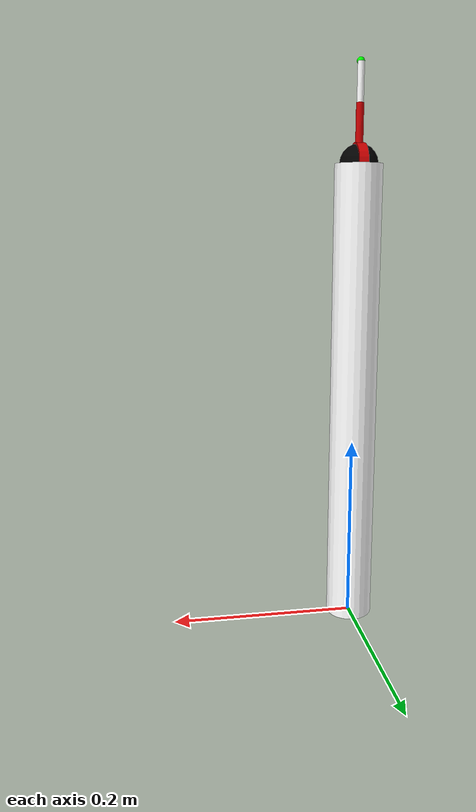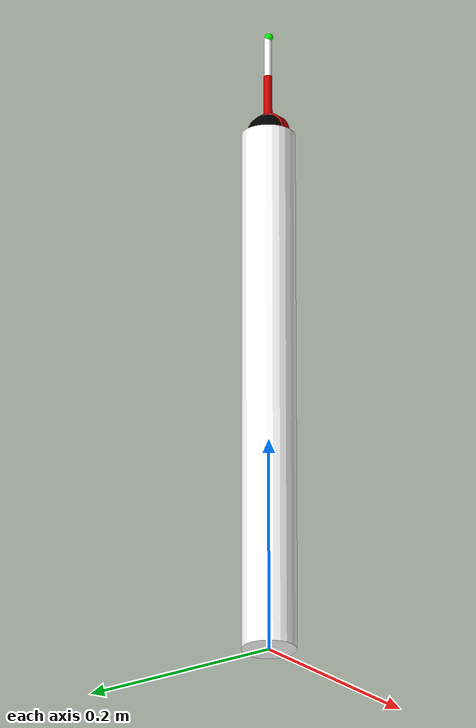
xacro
<?xml version="1.0"?>
<robot name="turret" xmlns:xacro="http://www.ros.org/wiki/xacro">

<xacro:arg name="x" default="0"/>
<xacro:arg name="y" default="0"/>
<xacro:arg name="mode" default="velocity"/>
<xacro:property name="mode" value="$(arg mode)"/>

<material name="matbase">
        <color rgba="1 1 1 1"/>
      </material>
 <material name="mat3">
        <color rgba="1 1 1 1"/>
      </material>
 <material name="mat2">
        <color rgba=".8 0 0 1"/>
      </material>
 <material name="mat1">
        <color rgba=".0 0 0 1"/>
      </material>
 <material name="mat4">
        <color rgba=".0 1 0 1"/>
      </material>

<xacro:macro name="inertia" params="mass">
</xacro:macro>

<!-- Links -->
  <link name="turret/base_link">
    <visual>
      <origin xyz="0 0 0.25" rpy="0 0 0" />
      <geometry>
        <cylinder length="0.5" radius="0.025"/>
      </geometry>
    <material name="matbase"/>
    </visual>
    <xacro:inertia mass="0.5"/>
  </link>

<link name="turret/link1">
<visual>
<geometry>
        <sphere radius="0.02"/>
</geometry>
 <material name="mat1"/>
    </visual>
    <xacro:inertia mass="0.1"/>
</link>

<link name="turret/link2">
<visual>
<origin xyz="0 0 0.0" rpy="0 1.57079632679 0" />
<geometry>
        <cylinder length="0.01" radius="0.021"/>
</geometry>
 <material name="mat2"/>
    </visual>
    <xacro:inertia mass="0.1"/>
</link>

<link name="turret/link2_2">
<visual>
        <origin xyz="0 .03 0.0" rpy="1.57079632679 0 0" />
        <geometry>
        <cylinder length="0.06" radius="0.004"/>
</geometry>
 <material name="mat2"/>
    </visual>
    <xacro:inertia mass="0.1"/>
</link>

<link name="turret/link3">
<visual>
        <origin xyz="0 0 .06" rpy="0 0 0" />
<geometry>
        <cylinder length="0.08" radius="0.0035"/>
</geometry>
 <material name="mat3"/>
    </visual>
    <xacro:inertia mass="0.1"/>
</link>

<link name="turret/tool0">
<visual>
        <origin xyz="0 0 .001" rpy="0 0 0" />
<geometry>
<sphere  radius=".004"/>
</geometry>
        <material name="mat4"/>
    </visual>
    <xacro:inertia mass="0.05"/>
</link>

<!-- Joints -->

	<joint name="joint1" type="revolute">
        <limit lower="-3.1416" upper="3.1416" effort="10" velocity="3" />
	<dynamics damping="0.0" friction="0.0"/>
    	<parent link="turret/base_link" />
    	<child link="turret/link1" />
    	<origin xyz="0.0 0 0.5" rpy="0 0 0" />
    	<axis xyz="0 0 1" />
	</joint>

	<joint name="joint2" type="revolute">
        <limit lower="-1.2" upper="1.2" effort="10" velocity="3" />
	<dynamics damping="0.0" friction="0.0"/>
    	<parent link="turret/link1" />
    	<child link="turret/link2" />
    	<origin xyz="0. 0 0.0" rpy="1.57079632679 0 0" />
    	<axis xyz="0 0 1" />
	</joint>

	<joint name="link2_2" type="fixed">
    	<parent link="turret/link2" />
    	<child link="turret/link2_2" />
    	<origin xyz="0.0 0 0.0" rpy="0 0 0" />
	</joint>

	<joint name="joint3" type="prismatic">
        <limit lower="0" upper="1." effort="10" velocity="3" />
    <dynamics damping="0.0" friction="0.0"/>
    	<parent link="turret/link2" />
    	<child link="turret/link3" />
    	<origin xyz="0. 0 0." rpy="-1.57079632679 0 0" />
    	<axis xyz="0 0 1" />
	</joint>

	<joint name="link4_2" type="fixed">
    	<parent link="turret/link3" />
    	<child link="turret/tool0" />
    	<origin xyz="0.0 0 0.1" rpy="${pi/2} ${pi/2} 0" />
	</joint>

    <xacro:macro name="control" params="joint">

      <xacro:if value="${mode == 'position'}">
        <plugin filename="libignition-gazebo-joint-position-controller-system.so" name="ignition::gazebo::systems::JointPositionController">
                <joint_name>${joint}</joint_name>
                <p_gain>1.</p_gain>
                <i_gain>0.1</i_gain>
                <d_gain>0.2</d_gain>
                <i_max>10</i_max>
                <i_min>-10</i_min>
                <cmd_max>10</cmd_max>
                <cmd_min>-10</cmd_min>
            </plugin>
    </xacro:if>

     <xacro:if value="${mode == 'velocity'}">
        <plugin filename="libignition-gazebo-joint-controller-system.so" name="ignition::gazebo::systems::JointController">
            <joint_name>${joint}</joint_name>
            <topic>turret/${joint}_cmd_vel</topic>
        </plugin>
        </xacro:if>

    </xacro:macro>

<gazebo>

      <!-- Velocity or position control -->
      <xacro:control joint="joint1"/>
      <xacro:control joint="joint2"/>
      <xacro:control joint="joint3"/>

      <!-- Publish joint states anyway -->
      <plugin filename="ignition-gazebo-joint-state-publisher-system" name="ignition::gazebo::systems::JointStatePublisher"/>

      <!-- Publish pose of this model -->
      <plugin
            filename="ignition-gazebo-pose-publisher-system"
            name="ignition::gazebo::systems::PosePublisher">
            <publish_link_pose>false</publish_link_pose>
            <publish_collision_pose>false</publish_collision_pose>
            <publish_visual_pose>false</publish_visual_pose>
            <publish_nested_model_pose>true</publish_nested_model_pose>
        </plugin>
    </gazebo>

 <gazebo reference="turret/tool0">
  <sensor name="camera" type="camera">
    <camera>
    <optical_frame_id>turret/tool0</optical_frame_id>
    <horizontal_fov>1.047</horizontal_fov>
    <image>
        <width>640</width>
        <height>400</height>
    </image>
    <clip>
        <near>0.05</near>
        <far>100</far>
    </clip>
    </camera>
    <always_on>1</always_on>
    <update_rate>30</update_rate>
    <visualize>true</visualize>
    <topic>turret/image</topic>
    <enable_metrics>false</enable_metrics>
  </sensor>
</gazebo>

</robot>
